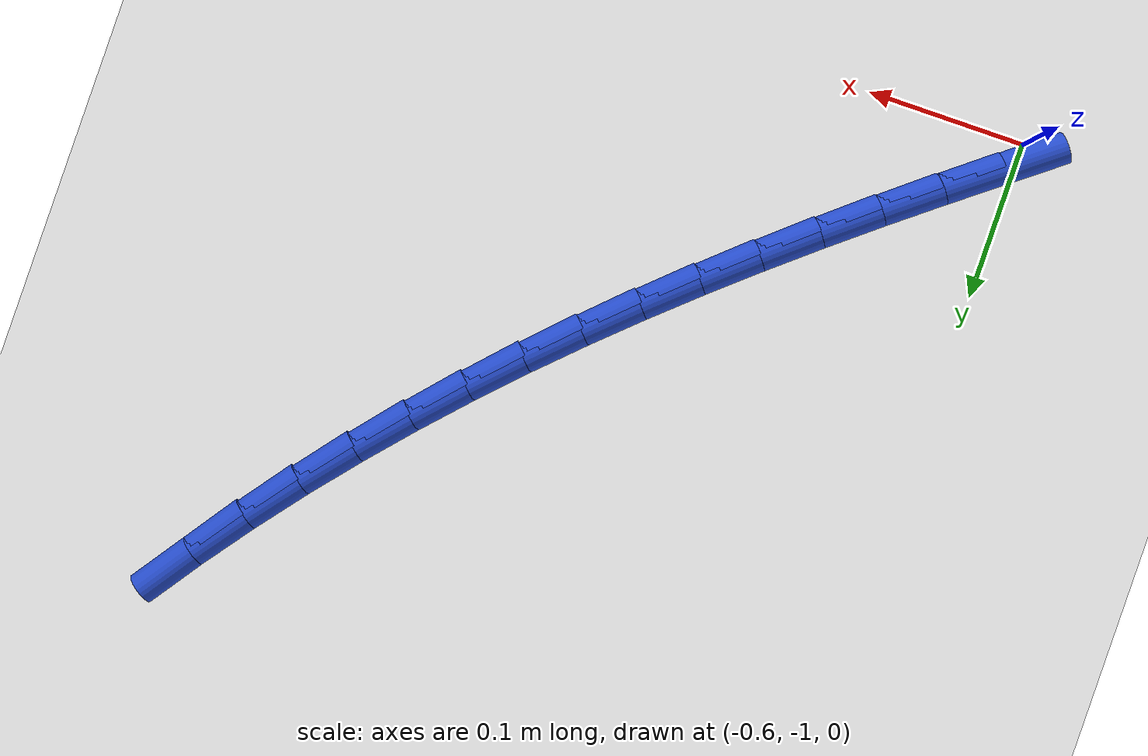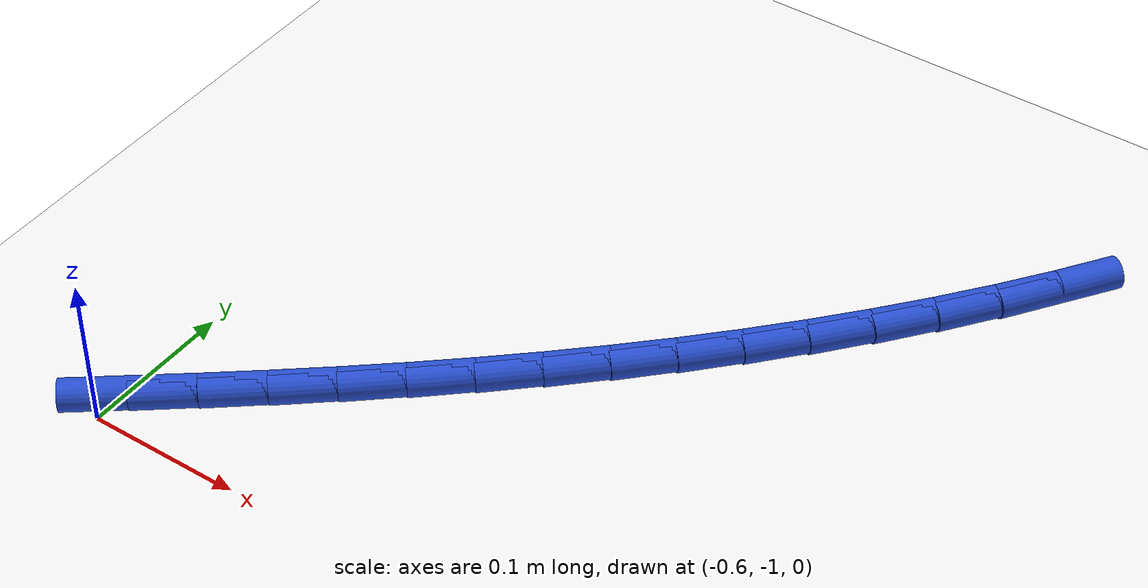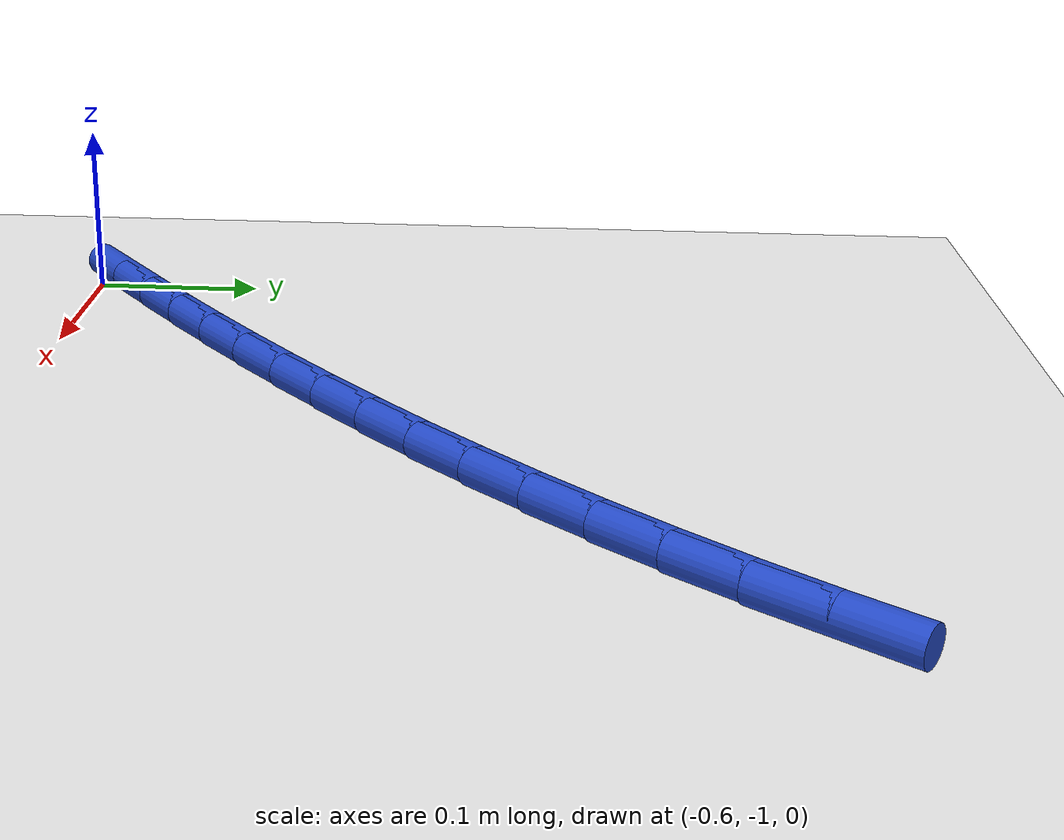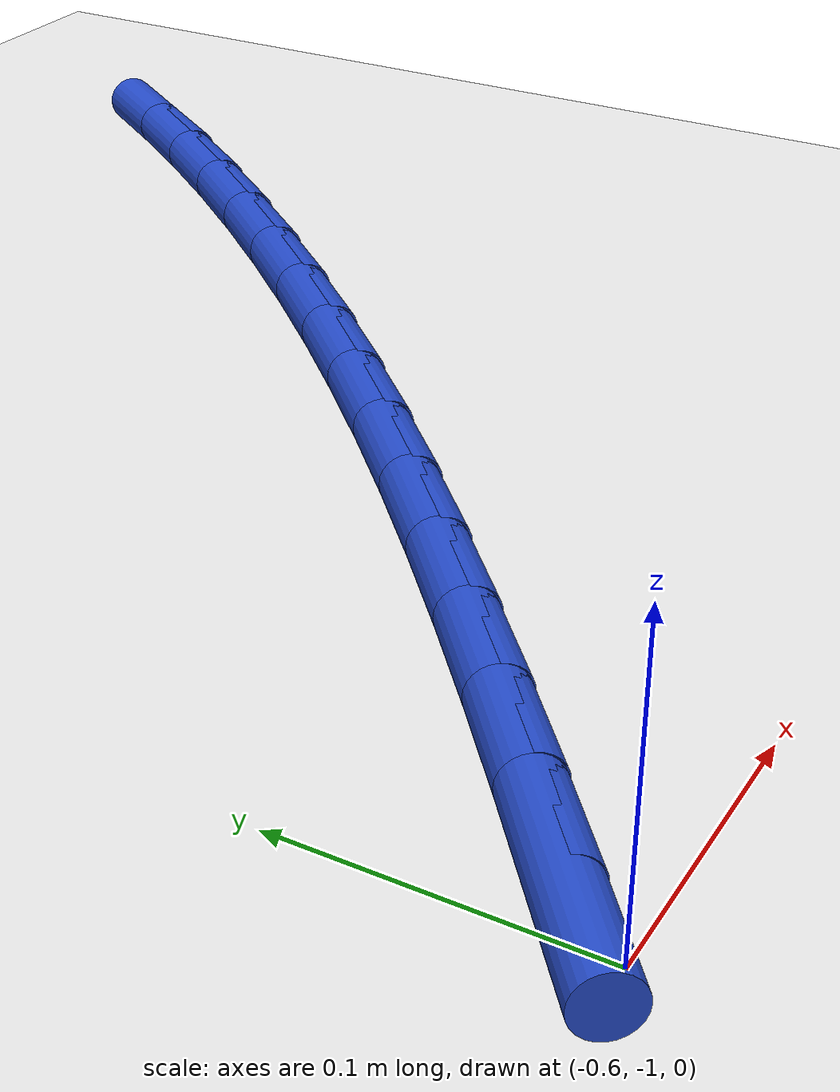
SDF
<sdf version="1.6">
 <world name="default">
  <model name="ground_plane">
   <static>1</static>
   <link name="link">
    <collision name="collision">
     <geometry><plane><normal>0 0 1</normal><size>100 100</size></plane></geometry>
     <surface><friction><ode><mu>100</mu><mu2>50</mu2></ode></friction></surface>
    </collision>
    <visual name="visual">
     <cast_shadows>0</cast_shadows>
     <geometry><plane><normal>0 0 1</normal><size>100 100</size></plane></geometry>
     <material>
      <script><uri>file://media/materials/scripts/gazebo.material</uri><name>Gazebo/WhiteGlow</name></script>
     </material>
    </visual>
   </link>
  </model>
  <model name="line">
   <link name="link_150">
    <pose>-0.5923542702049297 -0.9809812595662316 0.01 0 1.57 0.6579347712379185</pose>
    <collision name="collision">
     <geometry><cylinder><radius>0.01</radius><length>0.08</length></cylinder></geometry>
    </collision>
    <visual name="visual">
     <material>
      <script><name>Gazebo/Blue</name><uri>file://media/materials/scripts/gazebo.material</uri></script>
     </material>
     <geometry><cylinder><radius>0.01</radius><length>0.08</length></cylinder></geometry>
    </visual>
   </link>
   <link name="link_151">
    <pose>-0.560547153822343 -0.9564006879798228 0.01 0 1.57 0.6693426026866303</pose>
    <collision name="collision">
     <geometry><cylinder><radius>0.01</radius><length>0.08</length></cylinder></geometry>
    </collision>
    <visual name="visual">
     <material>
      <script><name>Gazebo/Blue</name><uri>file://media/materials/scripts/gazebo.material</uri></script>
     </material>
     <geometry><cylinder><radius>0.01</radius><length>0.08</length></cylinder></geometry>
    </visual>
   </link>
   <link name="link_152">
    <pose>-0.5292066330184766 -0.9316045471828301 0.01 0 1.57 0.6824175420510221</pose>
    <collision name="collision">
     <geometry><cylinder><radius>0.01</radius><length>0.08</length></cylinder></geometry>
    </collision>
    <visual name="visual">
     <material>
      <script><name>Gazebo/Blue</name><uri>file://media/materials/scripts/gazebo.material</uri></script>
     </material>
     <geometry><cylinder><radius>0.01</radius><length>0.08</length></cylinder></geometry>
    </visual>
   </link>
   <link name="link_153">
    <pose>-0.49835766550943666 -0.9065345886893399 0.01 0 1.57 0.6971649826477344</pose>
    <collision name="collision">
     <geometry><cylinder><radius>0.01</radius><length>0.08</length></cylinder></geometry>
    </collision>
    <visual name="visual">
     <material>
      <script><name>Gazebo/Blue</name><uri>file://media/materials/scripts/gazebo.material</uri></script>
     </material>
     <geometry><cylinder><radius>0.01</radius><length>0.08</length></cylinder></geometry>
    </visual>
   </link>
   <link name="link_154">
    <pose>-0.4680252090113279 -0.8811325640134373 0.01 0 1.57 0.7135821732879006</pose>
    <collision name="collision">
     <geometry><cylinder><radius>0.01</radius><length>0.08</length></cylinder></geometry>
    </collision>
    <visual name="visual">
     <material>
      <script><name>Gazebo/Blue</name><uri>file://media/materials/scripts/gazebo.material</uri></script>
     </material>
     <geometry><cylinder><radius>0.01</radius><length>0.08</length></cylinder></geometry>
    </visual>
   </link>
   <link name="link_155">
    <pose>-0.4382342212402574 -0.8553402246692094 0.01 0 1.57 0.7316568679035345</pose>
    <collision name="collision">
     <geometry><cylinder><radius>0.01</radius><length>0.08</length></cylinder></geometry>
    </collision>
    <visual name="visual">
     <material>
      <script><name>Gazebo/Blue</name><uri>file://media/materials/scripts/gazebo.material</uri></script>
     </material>
     <geometry><cylinder><radius>0.01</radius><length>0.08</length></cylinder></geometry>
    </visual>
   </link>
   <link name="link_156">
    <pose>-0.4090096599123303 -0.8290993221707421 0.01 0 1.57 0.7513659364025579</pose>
    <collision name="collision">
     <geometry><cylinder><radius>0.01</radius><length>0.08</length></cylinder></geometry>
    </collision>
    <visual name="visual">
     <material>
      <script><name>Gazebo/Blue</name><uri>file://media/materials/scripts/gazebo.material</uri></script>
     </material>
     <geometry><cylinder><radius>0.01</radius><length>0.08</length></cylinder></geometry>
    </visual>
   </link>
   <link name="link_157">
    <pose>-0.38037648274365216 -0.8023516080321208 0.01 0 1.57 0.7726739993015809</pose>
    <collision name="collision">
     <geometry><cylinder><radius>0.01</radius><length>0.08</length></cylinder></geometry>
    </collision>
    <visual name="visual">
     <material>
      <script><name>Gazebo/Blue</name><uri>file://media/materials/scripts/gazebo.material</uri></script>
     </material>
     <geometry><cylinder><radius>0.01</radius><length>0.08</length></cylinder></geometry>
    </visual>
   </link>
   <link name="link_158">
    <pose>-0.35235964745032883 -0.7750388337674322 0.01 0 1.57 0.7955321641745369</pose>
    <collision name="collision">
     <geometry><cylinder><radius>0.01</radius><length>0.08</length></cylinder></geometry>
    </collision>
    <visual name="visual">
     <material>
      <script><name>Gazebo/Blue</name><uri>file://media/materials/scripts/gazebo.material</uri></script>
     </material>
     <geometry><cylinder><radius>0.01</radius><length>0.08</length></cylinder></geometry>
    </visual>
   </link>
   <link name="link_159">
    <pose>-0.32498411174846525 -0.7471027508907611 0.01 0 1.57 0.8198769553615992</pose>
    <collision name="collision">
     <geometry><cylinder><radius>0.01</radius><length>0.08</length></cylinder></geometry>
    </collision>
    <visual name="visual">
     <material>
      <script><name>Gazebo/Blue</name><uri>file://media/materials/scripts/gazebo.material</uri></script>
     </material>
     <geometry><cylinder><radius>0.01</radius><length>0.08</length></cylinder></geometry>
    </visual>
   </link>
   <link name="link_160">
    <pose>-0.29827483335416843 -0.7184851109161949 0.01 0 1.57 0.8456295373603967</pose>
    <collision name="collision">
     <geometry><cylinder><radius>0.01</radius><length>0.08</length></cylinder></geometry>
    </collision>
    <visual name="visual">
     <material>
      <script><name>Gazebo/Blue</name><uri>file://media/materials/scripts/gazebo.material</uri></script>
     </material>
     <geometry><cylinder><radius>0.01</radius><length>0.08</length></cylinder></geometry>
    </visual>
   </link>
   <link name="link_161">
    <pose>-0.2722567699835433 -0.6891276653578191 0.01 0 1.57 0.8726953342764191</pose>
    <collision name="collision">
     <geometry><cylinder><radius>0.01</radius><length>0.08</length></cylinder></geometry>
    </collision>
    <visual name="visual">
     <material>
      <script><name>Gazebo/Blue</name><uri>file://media/materials/scripts/gazebo.material</uri></script>
     </material>
     <geometry><cylinder><radius>0.01</radius><length>0.08</length></cylinder></geometry>
    </visual>
   </link>
   <link name="link_162">
    <pose>-0.24695487935269567 -0.6589721657297196 0.01 0 1.57 0.9009665301244184</pose>
    <collision name="collision">
     <geometry><cylinder><radius>0.01</radius><length>0.08</length></cylinder></geometry>
    </collision>
    <visual name="visual">
     <material>
      <script><name>Gazebo/Blue</name><uri>file://media/materials/scripts/gazebo.material</uri></script>
     </material>
     <geometry><cylinder><radius>0.01</radius><length>0.08</length></cylinder></geometry>
    </visual>
   </link>
   <link name="link_163">
    <pose>-0.22239559700766737 -0.6279620772653204 0.01 0 1.57 0.9304281320621328</pose>
    <collision name="collision">
     <geometry><cylinder><radius>0.01</radius><length>0.08</length></cylinder></geometry>
    </collision>
    <visual name="visual">
     <material>
      <script><name>Gazebo/Blue</name><uri>file://media/materials/scripts/gazebo.material</uri></script>
     </material>
     <geometry><cylinder><radius>0.01</radius><length>0.08</length></cylinder></geometry>
    </visual>
   </link>
   <link name="link_164">
    <pose>-0.19864378235768787 -0.5960854222311491 0.01 0 1.57 0.9612385128471095</pose>
    <collision name="collision">
     <geometry><cylinder><radius>0.01</radius><length>0.08</length></cylinder></geometry>
    </collision>
    <visual name="visual">
     <material>
      <script><name>Gazebo/Blue</name><uri>file://media/materials/scripts/gazebo.material</uri></script>
     </material>
     <geometry><cylinder><radius>0.01</radius><length>0.08</length></cylinder></geometry>
    </visual>
   </link>
  </model>
 </world>
</sdf>
